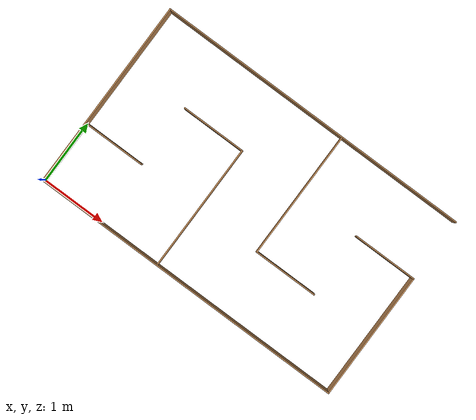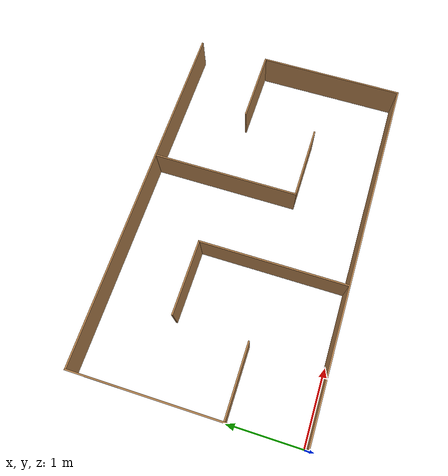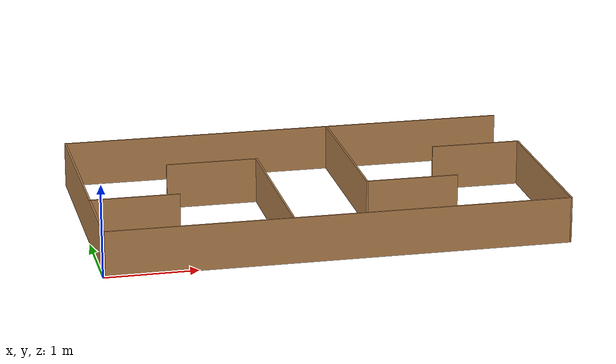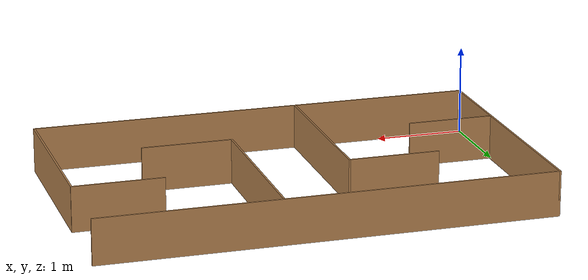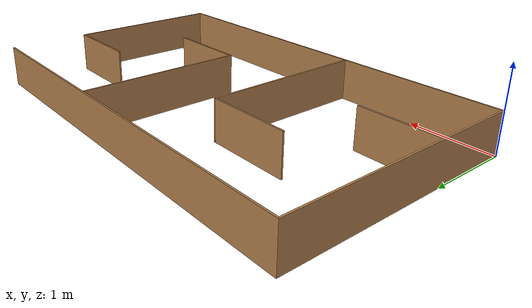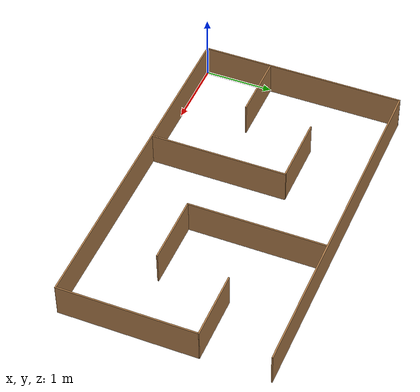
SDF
<?xml version='1.0'?>
<sdf version='1.6'>
  <model name='exp_01'>
    <pose frame=''>2.50147 1.49 0 0 -0 0</pose>
    <link name='Wall_0'>
      <collision name='Wall_0_Collision'>
        <geometry>
          <box>
            <size>5 0.02 0.5</size>
          </box>
        </geometry>
        <pose frame=''>0 0 0.25 0 -0 0</pose>
      </collision>
      <visual name='Wall_0_Visual'>
        <pose frame=''>0 0 0.25 0 -0 0</pose>
        <geometry>
          <box>
            <size>5 0.02 0.5</size>
          </box>
        </geometry>
        <material>
          <script>
            <uri>file://media/materials/scripts/gazebo.material</uri>
            <name>Gazebo/Wood</name>
          </script>
          <ambient>1 1 1 1</ambient>
        </material>
        <meta>
          <layer>0</layer>
        </meta>
      </visual>
      <pose frame=''>0 -1.49 0 0 -0 0</pose>
    </link>
    <link name='Wall_10'>
      <collision name='Wall_10_Collision'>
        <geometry>
          <box>
            <size>2 0.02 0.5</size>
          </box>
        </geometry>
        <pose frame=''>0 0 0.25 0 -0 0</pose>
      </collision>
      <visual name='Wall_10_Visual'>
        <pose frame=''>0 0 0.25 0 -0 0</pose>
        <geometry>
          <box>
            <size>2 0.02 0.5</size>
          </box>
        </geometry>
        <material>
          <script>
            <uri>file://media/materials/scripts/gazebo.material</uri>
            <name>Gazebo/Wood</name>
          </script>
          <ambient>1 1 1 1</ambient>
        </material>
        <meta>
          <layer>0</layer>
        </meta>
      </visual>
      <pose frame=''>-0.502337 -0.484421 0 0 -0 1.5708</pose>
    </link>
    <link name='Wall_12'>
      <collision name='Wall_12_Collision'>
        <geometry>
          <box>
            <size>1 0.02 0.5</size>
          </box>
        </geometry>
        <pose frame=''>0 0 0.25 0 -0 0</pose>
      </collision>
      <visual name='Wall_12_Visual'>
        <pose frame=''>0 0 0.25 0 -0 0</pose>
        <geometry>
          <box>
            <size>1 0.02 0.5</size>
          </box>
        </geometry>
        <material>
          <script>
            <uri>file://media/materials/scripts/gazebo.material</uri>
            <name>Gazebo/Wood</name>
          </script>
          <ambient>1 1 1 1</ambient>
        </material>
        <meta>
          <layer>0</layer>
        </meta>
      </visual>
      <pose frame=''>-1.00821 0.505376 0 0 -0 0</pose>
    </link>
    <link name='Wall_14'>
      <collision name='Wall_14_Collision'>
        <geometry>
          <box>
            <size>2 0.02 0.5</size>
          </box>
        </geometry>
        <pose frame=''>0 0 0.25 0 -0 0</pose>
      </collision>
      <visual name='Wall_14_Visual'>
        <pose frame=''>0 0 0.25 0 -0 0</pose>
        <geometry>
          <box>
            <size>2 0.02 0.5</size>
          </box>
        </geometry>
        <material>
          <script>
            <uri>file://media/materials/scripts/gazebo.material</uri>
            <name>Gazebo/Wood</name>
          </script>
          <ambient>1 1 1 1</ambient>
        </material>
        <meta>
          <layer>0</layer>
        </meta>
      </visual>
      <pose frame=''>0.508827 0.483477 0 0 -0 -1.5708</pose>
    </link>
    <link name='Wall_16'>
      <collision name='Wall_16_Collision'>
        <geometry>
          <box>
            <size>1 0.02 0.5</size>
          </box>
        </geometry>
        <pose frame=''>0 0 0.25 0 -0 0</pose>
      </collision>
      <visual name='Wall_16_Visual'>
        <pose frame=''>0 0 0.25 0 -0 0</pose>
        <geometry>
          <box>
            <size>1 0.02 0.5</size>
          </box>
        </geometry>
        <material>
          <script>
            <uri>file://media/materials/scripts/gazebo.material</uri>
            <name>Gazebo/Wood</name>
          </script>
          <ambient>1 1 1 1</ambient>
        </material>
        <meta>
          <layer>0</layer>
        </meta>
      </visual>
      <pose frame=''>1.0154 -0.5065 0 0 -0 0</pose>
    </link>
    <link name='Wall_18'>
      <collision name='Wall_18_Collision'>
        <geometry>
          <box>
            <size>1 0.02 0.5</size>
          </box>
        </geometry>
        <pose frame=''>0 0 0.25 0 -0 0</pose>
      </collision>
      <visual name='Wall_18_Visual'>
        <pose frame=''>0 0 0.25 0 -0 0</pose>
        <geometry>
          <box>
            <size>1 0.02 0.5</size>
          </box>
        </geometry>
        <material>
          <script>
            <uri>file://media/materials/scripts/gazebo.material</uri>
            <name>Gazebo/Wood</name>
          </script>
          <ambient>1 1 1 1</ambient>
        </material>
        <meta>
          <layer>0</layer>
        </meta>
      </visual>
      <pose frame=''>1.99945 0.500978 0 0 -0 0</pose>
    </link>
    <link name='Wall_2'>
      <collision name='Wall_2_Collision'>
        <geometry>
          <box>
            <size>3 0.02 0.5</size>
          </box>
        </geometry>
        <pose frame=''>0 0 0.25 0 -0 0</pose>
      </collision>
      <visual name='Wall_2_Visual'>
        <pose frame=''>0 0 0.25 0 -0 0</pose>
        <geometry>
          <box>
            <size>3 0.02 0.5</size>
          </box>
        </geometry>
        <material>
          <script>
            <uri>file://media/materials/scripts/gazebo.material</uri>
            <name>Gazebo/Wood</name>
          </script>
          <ambient>1 1 1 1</ambient>
        </material>
        <meta>
          <layer>0</layer>
        </meta>
      </visual>
      <pose frame=''>-2.49 0 0 0 -0 1.5708</pose>
    </link>
    <link name='Wall_4'>
      <collision name='Wall_4_Collision'>
        <geometry>
          <box>
            <size>5 0.02 0.5</size>
          </box>
        </geometry>
        <pose frame=''>0 0 0.25 0 -0 0</pose>
      </collision>
      <visual name='Wall_4_Visual'>
        <pose frame=''>0 0 0.25 0 -0 0</pose>
        <geometry>
          <box>
            <size>5 0.02 0.5</size>
          </box>
        </geometry>
        <material>
          <script>
            <uri>file://media/materials/scripts/gazebo.material</uri>
            <name>Gazebo/Wood</name>
          </script>
          <ambient>1 1 1 1</ambient>
        </material>
        <meta>
          <layer>0</layer>
        </meta>
      </visual>
      <pose frame=''>0 1.49 0 0 -0 0</pose>
    </link>
    <link name='Wall_6'>
      <collision name='Wall_6_Collision'>
        <geometry>
          <box>
            <size>2 0.02 0.5</size>
          </box>
        </geometry>
        <pose frame=''>0 0 0.25 0 -0 0</pose>
      </collision>
      <visual name='Wall_6_Visual'>
        <pose frame=''>0 0 0.25 0 -0 0</pose>
        <geometry>
          <box>
            <size>2 0.02 0.5</size>
          </box>
        </geometry>
        <material>
          <script>
            <uri>file://media/materials/scripts/gazebo.material</uri>
            <name>Gazebo/Wood</name>
          </script>
          <ambient>1 1 1 1</ambient>
        </material>
        <meta>
          <layer>0</layer>
        </meta>
      </visual>
      <pose frame=''>2.49 -0.5 0 0 -0 1.5708</pose>
    </link>
    <link name='Wall_8'>
      <collision name='Wall_8_Collision'>
        <geometry>
          <box>
            <size>0.97 0.02 0.5</size>
          </box>
        </geometry>
        <pose frame=''>0 0 0.25 0 -0 0</pose>
      </collision>
      <visual name='Wall_8_Visual'>
        <pose frame=''>0 0 0.25 0 -0 0</pose>
        <geometry>
          <box>
            <size>0.97 0.02 0.5</size>
          </box>
        </geometry>
        <material>
          <script>
            <uri>file://media/materials/scripts/gazebo.material</uri>
            <name>Gazebo/Wood</name>
          </script>
          <ambient>1 1 1 1</ambient>
        </material>
        <meta>
          <layer>0</layer>
        </meta>
      </visual>
      <pose frame=''>-2.01106 -0.488472 0 0 -0 3.14159</pose>
    </link>
    <static>1</static>
  </model>
</sdf>
